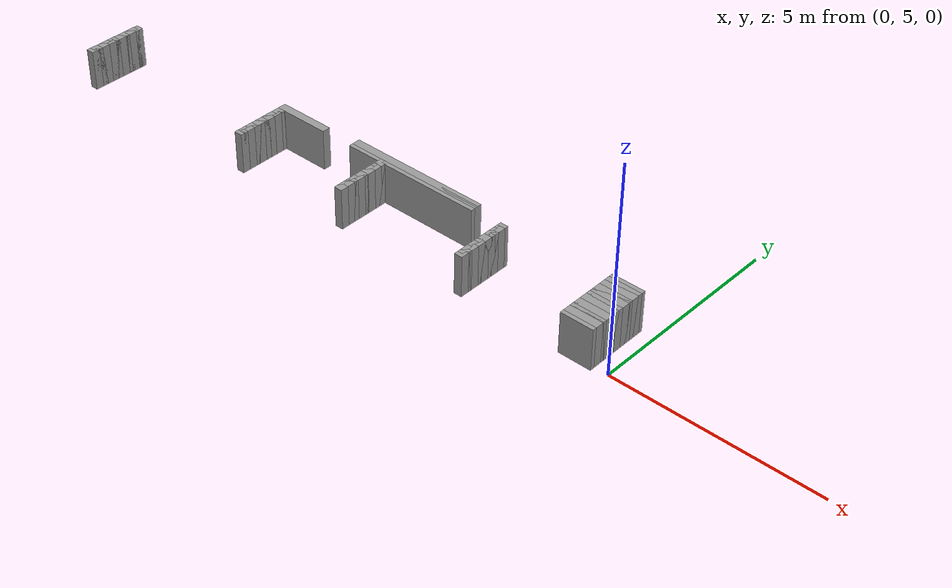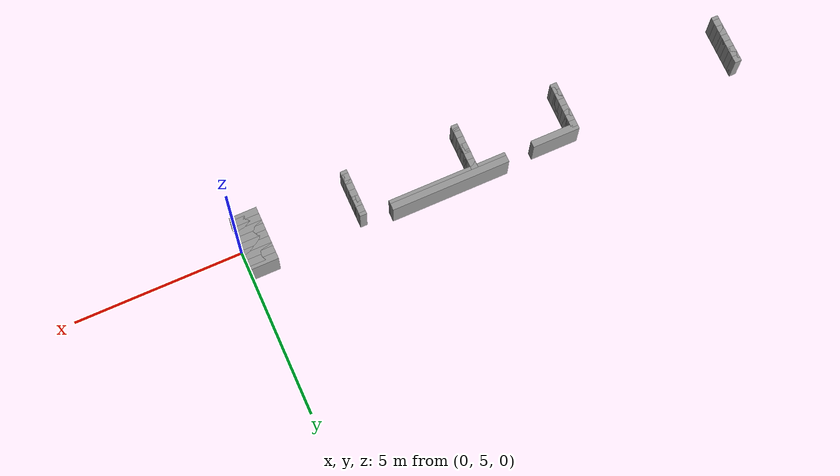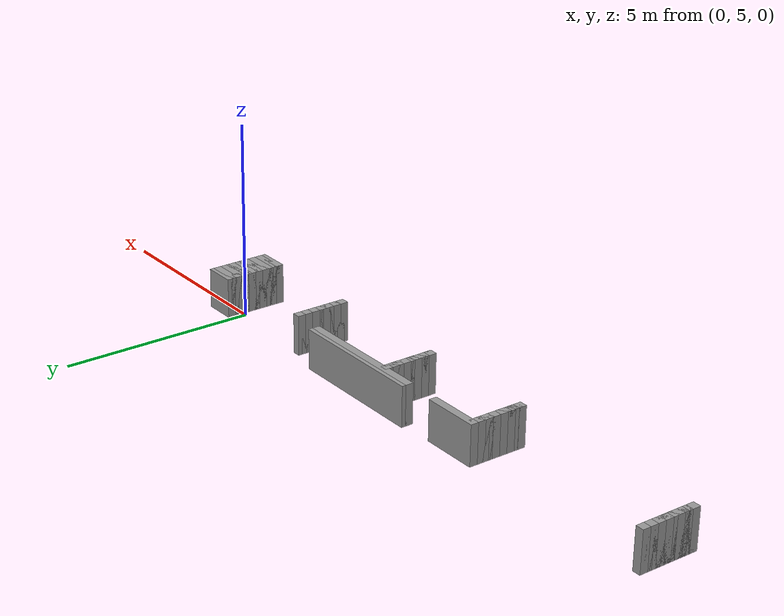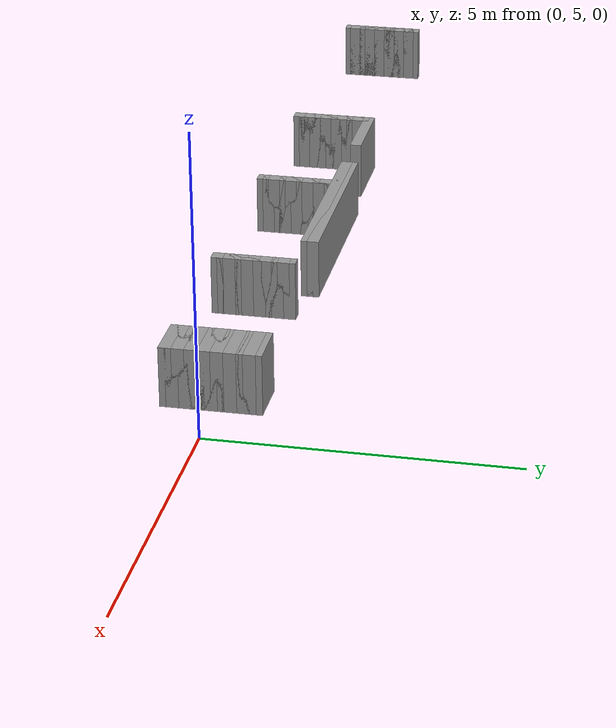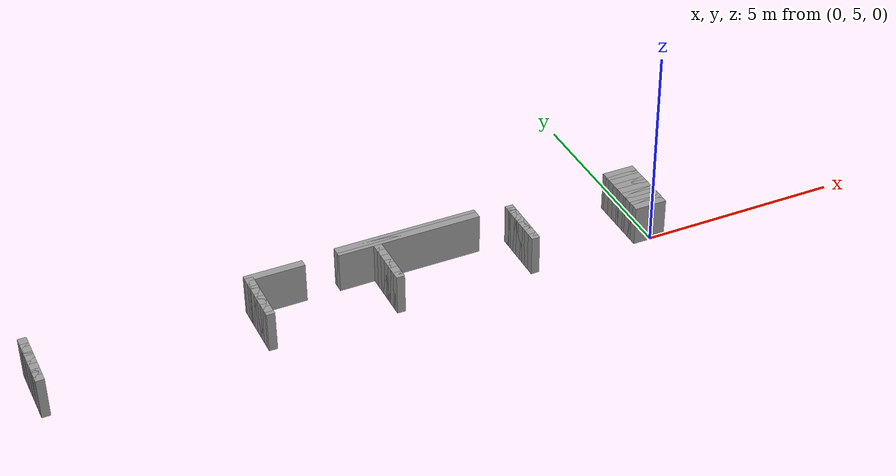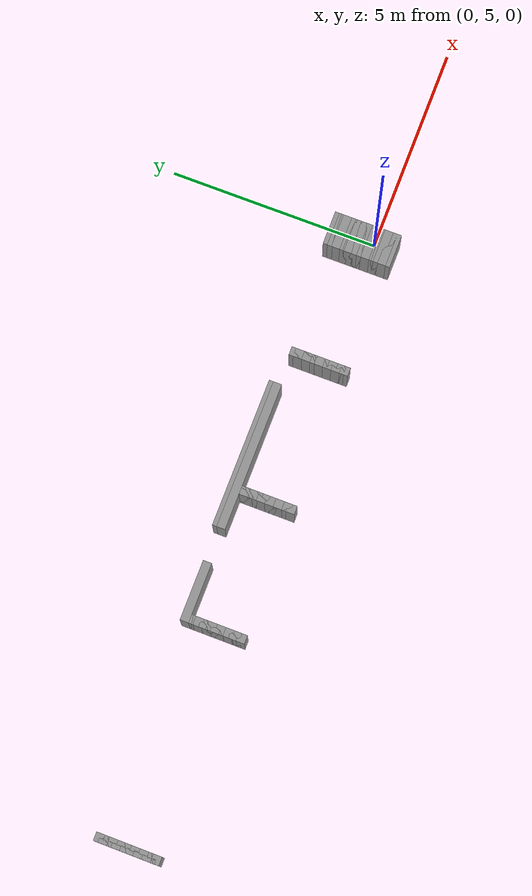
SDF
<sdf version="1.6">
 <world name="GridMap">
  <model name="GridMap">
   <link name="Wall_(4.0,45.0)">
    <collision name="Wall_(4.0,45.0)_Collision">
     <geometry><box><size>0.8 0.2 1.0</size></box></geometry>
     <pose>-0.4 4.5 0.5 0 -0 0</pose>
    </collision>
    <visual name="Wall_(4.0,45.0)_Visual">
     <geometry><box><size>0.8 0.2 1.0</size></box></geometry>
     <pose>-0.4 4.5 0.5 0 -0 0</pose>
     <material>
      <script><uri>file://media/materials/scripts/gazebo.material</uri><name>Gazebo/Grey</name></script>
      <ambient>1 1 1 1</ambient>
     </material>
     <meta><layer>0</layer></meta>
    </visual>
    <pose>0 0 0.5 0 -0 0</pose>
   </link>
   <link name="Wall_(34.0,45.0)">
    <collision name="Wall_(34.0,45.0)_Collision">
     <geometry><box><size>0.2 0.2 1.0</size></box></geometry>
     <pose>-3.4000000000000004 4.5 0.5 0 -0 0</pose>
    </collision>
    <visual name="Wall_(34.0,45.0)_Visual">
     <geometry><box><size>0.2 0.2 1.0</size></box></geometry>
     <pose>-3.4000000000000004 4.5 0.5 0 -0 0</pose>
     <material>
      <script><uri>file://media/materials/scripts/gazebo.material</uri><name>Gazebo/Grey</name></script>
      <ambient>1 1 1 1</ambient>
     </material>
     <meta><layer>0</layer></meta>
    </visual>
    <pose>0 0 0.5 0 -0 0</pose>
   </link>
   <link name="Wall_(67.5,45.0)">
    <collision name="Wall_(67.5,45.0)_Collision">
     <geometry><box><size>0.2 0.2 1.0</size></box></geometry>
     <pose>-6.75 4.5 0.5 0 -0 0</pose>
    </collision>
    <visual name="Wall_(67.5,45.0)_Visual">
     <geometry><box><size>0.2 0.2 1.0</size></box></geometry>
     <pose>-6.75 4.5 0.5 0 -0 0</pose>
     <material>
      <script><uri>file://media/materials/scripts/gazebo.material</uri><name>Gazebo/Grey</name></script>
      <ambient>1 1 1 1</ambient>
     </material>
     <meta><layer>0</layer></meta>
    </visual>
    <pose>0 0 0.5 0 -0 0</pose>
   </link>
   <link name="Wall_(98.0,45.0)">
    <collision name="Wall_(98.0,45.0)_Collision">
     <geometry><box><size>0.2 0.2 1.0</size></box></geometry>
     <pose>-9.8 4.5 0.5 0 -0 0</pose>
    </collision>
    <visual name="Wall_(98.0,45.0)_Visual">
     <geometry><box><size>0.2 0.2 1.0</size></box></geometry>
     <pose>-9.8 4.5 0.5 0 -0 0</pose>
     <material>
      <script><uri>file://media/materials/scripts/gazebo.material</uri><name>Gazebo/Grey</name></script>
      <ambient>1 1 1 1</ambient>
     </material>
     <meta><layer>0</layer></meta>
    </visual>
    <pose>0 0 0.5 0 -0 0</pose>
   </link>
   <link name="Wall_(148.5,45.0)">
    <collision name="Wall_(148.5,45.0)_Collision">
     <geometry><box><size>0.2 0.2 1.0</size></box></geometry>
     <pose>-14.850000000000001 4.5 0.5 0 -0 0</pose>
    </collision>
    <visual name="Wall_(148.5,45.0)_Visual">
     <geometry><box><size>0.2 0.2 1.0</size></box></geometry>
     <pose>-14.850000000000001 4.5 0.5 0 -0 0</pose>
     <material>
      <script><uri>file://media/materials/scripts/gazebo.material</uri><name>Gazebo/Grey</name></script>
      <ambient>1 1 1 1</ambient>
     </material>
     <meta><layer>0</layer></meta>
    </visual>
    <pose>0 0 0.5 0 -0 0</pose>
   </link>
   <link name="Wall_(4.0,46.0)">
    <collision name="Wall_(4.0,46.0)_Collision">
     <geometry><box><size>0.8 0.2 1.0</size></box></geometry>
     <pose>-0.4 4.6000000000000005 0.5 0 -0 0</pose>
    </collision>
    <visual name="Wall_(4.0,46.0)_Visual">
     <geometry><box><size>0.8 0.2 1.0</size></box></geometry>
     <pose>-0.4 4.6000000000000005 0.5 0 -0 0</pose>
     <material>
      <script><uri>file://media/materials/scripts/gazebo.material</uri><name>Gazebo/Grey</name></script>
      <ambient>1 1 1 1</ambient>
     </material>
     <meta><layer>0</layer></meta>
    </visual>
    <pose>0 0 0.5 0 -0 0</pose>
   </link>
   <link name="Wall_(34.0,46.0)">
    <collision name="Wall_(34.0,46.0)_Collision">
     <geometry><box><size>0.2 0.2 1.0</size></box></geometry>
     <pose>-3.4000000000000004 4.6000000000000005 0.5 0 -0 0</pose>
    </collision>
    <visual name="Wall_(34.0,46.0)_Visual">
     <geometry><box><size>0.2 0.2 1.0</size></box></geometry>
     <pose>-3.4000000000000004 4.6000000000000005 0.5 0 -0 0</pose>
     <material>
      <script><uri>file://media/materials/scripts/gazebo.material</uri><name>Gazebo/Grey</name></script>
      <ambient>1 1 1 1</ambient>
     </material>
     <meta><layer>0</layer></meta>
    </visual>
    <pose>0 0 0.5 0 -0 0</pose>
   </link>
   <link name="Wall_(67.5,46.0)">
    <collision name="Wall_(67.5,46.0)_Collision">
     <geometry><box><size>0.2 0.2 1.0</size></box></geometry>
     <pose>-6.75 4.6000000000000005 0.5 0 -0 0</pose>
    </collision>
    <visual name="Wall_(67.5,46.0)_Visual">
     <geometry><box><size>0.2 0.2 1.0</size></box></geometry>
     <pose>-6.75 4.6000000000000005 0.5 0 -0 0</pose>
     <material>
      <script><uri>file://media/materials/scripts/gazebo.material</uri><name>Gazebo/Grey</name></script>
      <ambient>1 1 1 1</ambient>
     </material>
     <meta><layer>0</layer></meta>
    </visual>
    <pose>0 0 0.5 0 -0 0</pose>
   </link>
   <link name="Wall_(98.0,46.0)">
    <collision name="Wall_(98.0,46.0)_Collision">
     <geometry><box><size>0.2 0.2 1.0</size></box></geometry>
     <pose>-9.8 4.6000000000000005 0.5 0 -0 0</pose>
    </collision>
    <visual name="Wall_(98.0,46.0)_Visual">
     <geometry><box><size>0.2 0.2 1.0</size></box></geometry>
     <pose>-9.8 4.6000000000000005 0.5 0 -0 0</pose>
     <material>
      <script><uri>file://media/materials/scripts/gazebo.material</uri><name>Gazebo/Grey</name></script>
      <ambient>1 1 1 1</ambient>
     </material>
     <meta><layer>0</layer></meta>
    </visual>
    <pose>0 0 0.5 0 -0 0</pose>
   </link>
   <link name="Wall_(148.5,46.0)">
    <collision name="Wall_(148.5,46.0)_Collision">
     <geometry><box><size>0.2 0.2 1.0</size></box></geometry>
     <pose>-14.850000000000001 4.6000000000000005 0.5 0 -0 0</pose>
    </collision>
    <visual name="Wall_(148.5,46.0)_Visual">
     <geometry><box><size>0.2 0.2 1.0</size></box></geometry>
     <pose>-14.850000000000001 4.6000000000000005 0.5 0 -0 0</pose>
     <material>
      <script><uri>file://media/materials/scripts/gazebo.material</uri><name>Gazebo/Grey</name></script>
      <ambient>1 1 1 1</ambient>
     </material>
     <meta><layer>0</layer></meta>
    </visual>
    <pose>0 0 0.5 0 -0 0</pose>
   </link>
   <link name="Wall_(4.0,47.0)">
    <collision name="Wall_(4.0,47.0)_Collision">
     <geometry><box><size>0.8 0.2 1.0</size></box></geometry>
     <pose>-0.4 4.7 0.5 0 -0 0</pose>
    </collision>
    <visual name="Wall_(4.0,47.0)_Visual">
     <geometry><box><size>0.8 0.2 1.0</size></box></geometry>
     <pose>-0.4 4.7 0.5 0 -0 0</pose>
     <material>
      <script><uri>file://media/materials/scripts/gazebo.material</uri><name>Gazebo/Grey</name></script>
      <ambient>1 1 1 1</ambient>
     </material>
     <meta><layer>0</layer></meta>
    </visual>
    <pose>0 0 0.5 0 -0 0</pose>
   </link>
   <link name="Wall_(34.0,47.0)">
    <collision name="Wall_(34.0,47.0)_Collision">
     <geometry><box><size>0.2 0.2 1.0</size></box></geometry>
     <pose>-3.4000000000000004 4.7 0.5 0 -0 0</pose>
    </collision>
    <visual name="Wall_(34.0,47.0)_Visual">
     <geometry><box><size>0.2 0.2 1.0</size></box></geometry>
     <pose>-3.4000000000000004 4.7 0.5 0 -0 0</pose>
     <material>
      <script><uri>file://media/materials/scripts/gazebo.material</uri><name>Gazebo/Grey</name></script>
      <ambient>1 1 1 1</ambient>
     </material>
     <meta><layer>0</layer></meta>
    </visual>
    <pose>0 0 0.5 0 -0 0</pose>
   </link>
   <link name="Wall_(67.5,47.0)">
    <collision name="Wall_(67.5,47.0)_Collision">
     <geometry><box><size>0.2 0.2 1.0</size></box></geometry>
     <pose>-6.75 4.7 0.5 0 -0 0</pose>
    </collision>
    <visual name="Wall_(67.5,47.0)_Visual">
     <geometry><box><size>0.2 0.2 1.0</size></box></geometry>
     <pose>-6.75 4.7 0.5 0 -0 0</pose>
     <material>
      <script><uri>file://media/materials/scripts/gazebo.material</uri><name>Gazebo/Grey</name></script>
      <ambient>1 1 1 1</ambient>
     </material>
     <meta><layer>0</layer></meta>
    </visual>
    <pose>0 0 0.5 0 -0 0</pose>
   </link>
   <link name="Wall_(98.0,47.0)">
    <collision name="Wall_(98.0,47.0)_Collision">
     <geometry><box><size>0.2 0.2 1.0</size></box></geometry>
     <pose>-9.8 4.7 0.5 0 -0 0</pose>
    </collision>
    <visual name="Wall_(98.0,47.0)_Visual">
     <geometry><box><size>0.2 0.2 1.0</size></box></geometry>
     <pose>-9.8 4.7 0.5 0 -0 0</pose>
     <material>
      <script><uri>file://media/materials/scripts/gazebo.material</uri><name>Gazebo/Grey</name></script>
      <ambient>1 1 1 1</ambient>
     </material>
     <meta><layer>0</layer></meta>
    </visual>
    <pose>0 0 0.5 0 -0 0</pose>
   </link>
   <link name="Wall_(148.5,47.0)">
    <collision name="Wall_(148.5,47.0)_Collision">
     <geometry><box><size>0.2 0.2 1.0</size></box></geometry>
     <pose>-14.850000000000001 4.7 0.5 0 -0 0</pose>
    </collision>
    <visual name="Wall_(148.5,47.0)_Visual">
     <geometry><box><size>0.2 0.2 1.0</size></box></geometry>
     <pose>-14.850000000000001 4.7 0.5 0 -0 0</pose>
     <material>
      <script><uri>file://media/materials/scripts/gazebo.material</uri><name>Gazebo/Grey</name></script>
      <ambient>1 1 1 1</ambient>
     </material>
     <meta><layer>0</layer></meta>
    </visual>
    <pose>0 0 0.5 0 -0 0</pose>
   </link>
   <link name="Wall_(4.0,48.0)">
    <collision name="Wall_(4.0,48.0)_Collision">
     <geometry><box><size>0.8 0.2 1.0</size></box></geometry>
     <pose>-0.4 4.800000000000001 0.5 0 -0 0</pose>
    </collision>
    <visual name="Wall_(4.0,48.0)_Visual">
     <geometry><box><size>0.8 0.2 1.0</size></box></geometry>
     <pose>-0.4 4.800000000000001 0.5 0 -0 0</pose>
     <material>
      <script><uri>file://media/materials/scripts/gazebo.material</uri><name>Gazebo/Grey</name></script>
      <ambient>1 1 1 1</ambient>
     </material>
     <meta><layer>0</layer></meta>
    </visual>
    <pose>0 0 0.5 0 -0 0</pose>
   </link>
   <link name="Wall_(34.0,48.0)">
    <collision name="Wall_(34.0,48.0)_Collision">
     <geometry><box><size>0.2 0.2 1.0</size></box></geometry>
     <pose>-3.4000000000000004 4.800000000000001 0.5 0 -0 0</pose>
    </collision>
    <visual name="Wall_(34.0,48.0)_Visual">
     <geometry><box><size>0.2 0.2 1.0</size></box></geometry>
     <pose>-3.4000000000000004 4.800000000000001 0.5 0 -0 0</pose>
     <material>
      <script><uri>file://media/materials/scripts/gazebo.material</uri><name>Gazebo/Grey</name></script>
      <ambient>1 1 1 1</ambient>
     </material>
     <meta><layer>0</layer></meta>
    </visual>
    <pose>0 0 0.5 0 -0 0</pose>
   </link>
   <link name="Wall_(67.5,48.0)">
    <collision name="Wall_(67.5,48.0)_Collision">
     <geometry><box><size>0.2 0.2 1.0</size></box></geometry>
     <pose>-6.75 4.800000000000001 0.5 0 -0 0</pose>
    </collision>
    <visual name="Wall_(67.5,48.0)_Visual">
     <geometry><box><size>0.2 0.2 1.0</size></box></geometry>
     <pose>-6.75 4.800000000000001 0.5 0 -0 0</pose>
     <material>
      <script><uri>file://media/materials/scripts/gazebo.material</uri><name>Gazebo/Grey</name></script>
      <ambient>1 1 1 1</ambient>
     </material>
     <meta><layer>0</layer></meta>
    </visual>
    <pose>0 0 0.5 0 -0 0</pose>
   </link>
   <link name="Wall_(98.0,48.0)">
    <collision name="Wall_(98.0,48.0)_Collision">
     <geometry><box><size>0.2 0.2 1.0</size></box></geometry>
     <pose>-9.8 4.800000000000001 0.5 0 -0 0</pose>
    </collision>
    <visual name="Wall_(98.0,48.0)_Visual">
     <geometry><box><size>0.2 0.2 1.0</size></box></geometry>
     <pose>-9.8 4.800000000000001 0.5 0 -0 0</pose>
     <material>
      <script><uri>file://media/materials/scripts/gazebo.material</uri><name>Gazebo/Grey</name></script>
      <ambient>1 1 1 1</ambient>
     </material>
     <meta><layer>0</layer></meta>
    </visual>
    <pose>0 0 0.5 0 -0 0</pose>
   </link>
   <link name="Wall_(148.5,48.0)">
    <collision name="Wall_(148.5,48.0)_Collision">
     <geometry><box><size>0.2 0.2 1.0</size></box></geometry>
     <pose>-14.850000000000001 4.800000000000001 0.5 0 -0 0</pose>
    </collision>
    <visual name="Wall_(148.5,48.0)_Visual">
     <geometry><box><size>0.2 0.2 1.0</size></box></geometry>
     <pose>-14.850000000000001 4.800000000000001 0.5 0 -0 0</pose>
     <material>
      <script><uri>file://media/materials/scripts/gazebo.material</uri><name>Gazebo/Grey</name></script>
      <ambient>1 1 1 1</ambient>
     </material>
     <meta><layer>0</layer></meta>
    </visual>
    <pose>0 0 0.5 0 -0 0</pose>
   </link>
   <link name="Wall_(4.0,49.0)">
    <collision name="Wall_(4.0,49.0)_Collision">
     <geometry><box><size>0.8 0.2 1.0</size></box></geometry>
     <pose>-0.4 4.9 0.5 0 -0 0</pose>
    </collision>
    <visual name="Wall_(4.0,49.0)_Visual">
     <geometry><box><size>0.8 0.2 1.0</size></box></geometry>
     <pose>-0.4 4.9 0.5 0 -0 0</pose>
     <material>
      <script><uri>file://media/materials/scripts/gazebo.material</uri><name>Gazebo/Grey</name></script>
      <ambient>1 1 1 1</ambient>
     </material>
     <meta><layer>0</layer></meta>
    </visual>
    <pose>0 0 0.5 0 -0 0</pose>
   </link>
   <link name="Wall_(34.0,49.0)">
    <collision name="Wall_(34.0,49.0)_Collision">
     <geometry><box><size>0.2 0.2 1.0</size></box></geometry>
     <pose>-3.4000000000000004 4.9 0.5 0 -0 0</pose>
    </collision>
    <visual name="Wall_(34.0,49.0)_Visual">
     <geometry><box><size>0.2 0.2 1.0</size></box></geometry>
     <pose>-3.4000000000000004 4.9 0.5 0 -0 0</pose>
     <material>
      <script><uri>file://media/materials/scripts/gazebo.material</uri><name>Gazebo/Grey</name></script>
      <ambient>1 1 1 1</ambient>
     </material>
     <meta><layer>0</layer></meta>
    </visual>
    <pose>0 0 0.5 0 -0 0</pose>
   </link>
   <link name="Wall_(67.5,49.0)">
    <collision name="Wall_(67.5,49.0)_Collision">
     <geometry><box><size>0.2 0.2 1.0</size></box></geometry>
     <pose>-6.75 4.9 0.5 0 -0 0</pose>
    </collision>
    <visual name="Wall_(67.5,49.0)_Visual">
     <geometry><box><size>0.2 0.2 1.0</size></box></geometry>
     <pose>-6.75 4.9 0.5 0 -0 0</pose>
     <material>
      <script><uri>file://media/materials/scripts/gazebo.material</uri><name>Gazebo/Grey</name></script>
      <ambient>1 1 1 1</ambient>
     </material>
     <meta><layer>0</layer></meta>
    </visual>
    <pose>0 0 0.5 0 -0 0</pose>
   </link>
   <link name="Wall_(98.0,49.0)">
    <collision name="Wall_(98.0,49.0)_Collision">
     <geometry><box><size>0.2 0.2 1.0</size></box></geometry>
     <pose>-9.8 4.9 0.5 0 -0 0</pose>
    </collision>
    <visual name="Wall_(98.0,49.0)_Visual">
     <geometry><box><size>0.2 0.2 1.0</size></box></geometry>
     <pose>-9.8 4.9 0.5 0 -0 0</pose>
     <material>
      <script><uri>file://media/materials/scripts/gazebo.material</uri><name>Gazebo/Grey</name></script>
      <ambient>1 1 1 1</ambient>
     </material>
     <meta><layer>0</layer></meta>
    </visual>
    <pose>0 0 0.5 0 -0 0</pose>
   </link>
   <link name="Wall_(148.5,49.0)">
    <collision name="Wall_(148.5,49.0)_Collision">
     <geometry><box><size>0.2 0.2 1.0</size></box></geometry>
     <pose>-14.850000000000001 4.9 0.5 0 -0 0</pose>
    </collision>
    <visual name="Wall_(148.5,49.0)_Visual">
     <geometry><box><size>0.2 0.2 1.0</size></box></geometry>
     <pose>-14.850000000000001 4.9 0.5 0 -0 0</pose>
     <material>
      <script><uri>file://media/materials/scripts/gazebo.material</uri><name>Gazebo/Grey</name></script>
      <ambient>1 1 1 1</ambient>
     </material>
     <meta><layer>0</layer></meta>
    </visual>
    <pose>0 0 0.5 0 -0 0</pose>
   </link>
   <link name="Wall_(4.0,50.0)">
    <collision name="Wall_(4.0,50.0)_Collision">
     <geometry><box><size>0.8 0.2 1.0</size></box></geometry>
     <pose>-0.4 5.0 0.5 0 -0 0</pose>
    </collision>
    <visual name="Wall_(4.0,50.0)_Visual">
     <geometry><box><size>0.8 0.2 1.0</size></box></geometry>
     <pose>-0.4 5.0 0.5 0 -0 0</pose>
     <material>
      <script><uri>file://media/materials/scripts/gazebo.material</uri><name>Gazebo/Grey</name></script>
      <ambient>1 1 1 1</ambient>
     </material>
     <meta><layer>0</layer></meta>
    </visual>
    <pose>0 0 0.5 0 -0 0</pose>
   </link>
   <link name="Wall_(34.0,50.0)">
    <collision name="Wall_(34.0,50.0)_Collision">
     <geometry><box><size>0.2 0.2 1.0</size></box></geometry>
     <pose>-3.4000000000000004 5.0 0.5 0 -0 0</pose>
    </collision>
    <visual name="Wall_(34.0,50.0)_Visual">
     <geometry><box><size>0.2 0.2 1.0</size></box></geometry>
     <pose>-3.4000000000000004 5.0 0.5 0 -0 0</pose>
     <material>
      <script><uri>file://media/materials/scripts/gazebo.material</uri><name>Gazebo/Grey</name></script>
      <ambient>1 1 1 1</ambient>
     </material>
     <meta><layer>0</layer></meta>
    </visual>
    <pose>0 0 0.5 0 -0 0</pose>
   </link>
   <link name="Wall_(67.5,50.0)">
    <collision name="Wall_(67.5,50.0)_Collision">
     <geometry><box><size>0.2 0.2 1.0</size></box></geometry>
     <pose>-6.75 5.0 0.5 0 -0 0</pose>
    </collision>
    <visual name="Wall_(67.5,50.0)_Visual">
     <geometry><box><size>0.2 0.2 1.0</size></box></geometry>
     <pose>-6.75 5.0 0.5 0 -0 0</pose>
     <material>
      <script><uri>file://media/materials/scripts/gazebo.material</uri><name>Gazebo/Grey</name></script>
      <ambient>1 1 1 1</ambient>
     </material>
     <meta><layer>0</layer></meta>
    </visual>
    <pose>0 0 0.5 0 -0 0</pose>
   </link>
   <link name="Wall_(98.0,50.0)">
    <collision name="Wall_(98.0,50.0)_Collision">
     <geometry><box><size>0.2 0.2 1.0</size></box></geometry>
     <pose>-9.8 5.0 0.5 0 -0 0</pose>
    </collision>
    <visual name="Wall_(98.0,50.0)_Visual">
     <geometry><box><size>0.2 0.2 1.0</size></box></geometry>
     <pose>-9.8 5.0 0.5 0 -0 0</pose>
     <material>
      <script><uri>file://media/materials/scripts/gazebo.material</uri><name>Gazebo/Grey</name></script>
      <ambient>1 1 1 1</ambient>
     </material>
     <meta><layer>0</layer></meta>
    </visual>
    <pose>0 0 0.5 0 -0 0</pose>
   </link>
   <link name="Wall_(148.5,50.0)">
    <collision name="Wall_(148.5,50.0)_Collision">
     <geometry><box><size>0.2 0.2 1.0</size></box></geometry>
     <pose>-14.850000000000001 5.0 0.5 0 -0 0</pose>
    </collision>
    <visual name="Wall_(148.5,50.0)_Visual">
     <geometry><box><size>0.2 0.2 1.0</size></box></geometry>
     <pose>-14.850000000000001 5.0 0.5 0 -0 0</pose>
     <material>
      <script><uri>file://media/materials/scripts/gazebo.material</uri><name>Gazebo/Grey</name></script>
      <ambient>1 1 1 1</ambient>
     </material>
     <meta><layer>0</layer></meta>
    </visual>
    <pose>0 0 0.5 0 -0 0</pose>
   </link>
   <link name="Wall_(4.0,51.0)">
    <collision name="Wall_(4.0,51.0)_Collision">
     <geometry><box><size>0.8 0.2 1.0</size></box></geometry>
     <pose>-0.4 5.1000000000000005 0.5 0 -0 0</pose>
    </collision>
    <visual name="Wall_(4.0,51.0)_Visual">
     <geometry><box><size>0.8 0.2 1.0</size></box></geometry>
     <pose>-0.4 5.1000000000000005 0.5 0 -0 0</pose>
     <material>
      <script><uri>file://media/materials/scripts/gazebo.material</uri><name>Gazebo/Grey</name></script>
      <ambient>1 1 1 1</ambient>
     </material>
     <meta><layer>0</layer></meta>
    </visual>
    <pose>0 0 0.5 0 -0 0</pose>
   </link>
   <link name="Wall_(34.0,51.0)">
    <collision name="Wall_(34.0,51.0)_Collision">
     <geometry><box><size>0.2 0.2 1.0</size></box></geometry>
     <pose>-3.4000000000000004 5.1000000000000005 0.5 0 -0 0</pose>
    </collision>
    <visual name="Wall_(34.0,51.0)_Visual">
     <geometry><box><size>0.2 0.2 1.0</size></box></geometry>
     <pose>-3.4000000000000004 5.1000000000000005 0.5 0 -0 0</pose>
     <material>
      <script><uri>file://media/materials/scripts/gazebo.material</uri><name>Gazebo/Grey</name></script>
      <ambient>1 1 1 1</ambient>
     </material>
     <meta><layer>0</layer></meta>
    </visual>
    <pose>0 0 0.5 0 -0 0</pose>
   </link>
   <link name="Wall_(67.5,51.0)">
    <collision name="Wall_(67.5,51.0)_Collision">
     <geometry><box><size>0.2 0.2 1.0</size></box></geometry>
     <pose>-6.75 5.1000000000000005 0.5 0 -0 0</pose>
    </collision>
    <visual name="Wall_(67.5,51.0)_Visual">
     <geometry><box><size>0.2 0.2 1.0</size></box></geometry>
     <pose>-6.75 5.1000000000000005 0.5 0 -0 0</pose>
     <material>
      <script><uri>file://media/materials/scripts/gazebo.material</uri><name>Gazebo/Grey</name></script>
      <ambient>1 1 1 1</ambient>
     </material>
     <meta><layer>0</layer></meta>
    </visual>
    <pose>0 0 0.5 0 -0 0</pose>
   </link>
   <link name="Wall_(98.0,51.0)">
    <collision name="Wall_(98.0,51.0)_Collision">
     <geometry><box><size>0.2 0.2 1.0</size></box></geometry>
     <pose>-9.8 5.1000000000000005 0.5 0 -0 0</pose>
    </collision>
    <visual name="Wall_(98.0,51.0)_Visual">
     <geometry><box><size>0.2 0.2 1.0</size></box></geometry>
     <pose>-9.8 5.1000000000000005 0.5 0 -0 0</pose>
     <material>
      <script><uri>file://media/materials/scripts/gazebo.material</uri><name>Gazebo/Grey</name></script>
      <ambient>1 1 1 1</ambient>
     </material>
     <meta><layer>0</layer></meta>
    </visual>
    <pose>0 0 0.5 0 -0 0</pose>
   </link>
   <link name="Wall_(148.5,51.0)">
    <collision name="Wall_(148.5,51.0)_Collision">
     <geometry><box><size>0.2 0.2 1.0</size></box></geometry>
     <pose>-14.850000000000001 5.1000000000000005 0.5 0 -0 0</pose>
    </collision>
    <visual name="Wall_(148.5,51.0)_Visual">
     <geometry><box><size>0.2 0.2 1.0</size></box></geometry>
     <pose>-14.850000000000001 5.1000000000000005 0.5 0 -0 0</pose>
     <material>
      <script><uri>file://media/materials/scripts/gazebo.material</uri><name>Gazebo/Grey</name></script>
      <ambient>1 1 1 1</ambient>
     </material>
     <meta><layer>0</layer></meta>
    </visual>
    <pose>0 0 0.5 0 -0 0</pose>
   </link>
   <link name="Wall_(4.0,52.0)">
    <collision name="Wall_(4.0,52.0)_Collision">
     <geometry><box><size>0.8 0.2 1.0</size></box></geometry>
     <pose>-0.4 5.2 0.5 0 -0 0</pose>
    </collision>
    <visual name="Wall_(4.0,52.0)_Visual">
     <geometry><box><size>0.8 0.2 1.0</size></box></geometry>
     <pose>-0.4 5.2 0.5 0 -0 0</pose>
     <material>
      <script><uri>file://media/materials/scripts/gazebo.material</uri><name>Gazebo/Grey</name></script>
      <ambient>1 1 1 1</ambient>
     </material>
     <meta><layer>0</layer></meta>
    </visual>
    <pose>0 0 0.5 0 -0 0</pose>
   </link>
   <link name="Wall_(34.0,52.0)">
    <collision name="Wall_(34.0,52.0)_Collision">
     <geometry><box><size>0.2 0.2 1.0</size></box></geometry>
     <pose>-3.4000000000000004 5.2 0.5 0 -0 0</pose>
    </collision>
    <visual name="Wall_(34.0,52.0)_Visual">
     <geometry><box><size>0.2 0.2 1.0</size></box></geometry>
     <pose>-3.4000000000000004 5.2 0.5 0 -0 0</pose>
     <material>
      <script><uri>file://media/materials/scripts/gazebo.material</uri><name>Gazebo/Grey</name></script>
      <ambient>1 1 1 1</ambient>
     </material>
     <meta><layer>0</layer></meta>
    </visual>
    <pose>0 0 0.5 0 -0 0</pose>
   </link>
   <link name="Wall_(67.5,52.0)">
    <collision name="Wall_(67.5,52.0)_Collision">
     <geometry><box><size>0.2 0.2 1.0</size></box></geometry>
     <pose>-6.75 5.2 0.5 0 -0 0</pose>
    </collision>
    <visual name="Wall_(67.5,52.0)_Visual">
     <geometry><box><size>0.2 0.2 1.0</size></box></geometry>
     <pose>-6.75 5.2 0.5 0 -0 0</pose>
     <material>
      <script><uri>file://media/materials/scripts/gazebo.material</uri><name>Gazebo/Grey</name></script>
      <ambient>1 1 1 1</ambient>
     </material>
     <meta><layer>0</layer></meta>
    </visual>
    <pose>0 0 0.5 0 -0 0</pose>
   </link>
   <link name="Wall_(98.0,52.0)">
    <collision name="Wall_(98.0,52.0)_Collision">
     <geometry><box><size>0.2 0.2 1.0</size></box></geometry>
     <pose>-9.8 5.2 0.5 0 -0 0</pose>
    </collision>
    <visual name="Wall_(98.0,52.0)_Visual">
     <geometry><box><size>0.2 0.2 1.0</size></box></geometry>
     <pose>-9.8 5.2 0.5 0 -0 0</pose>
     <material>
      <script><uri>file://media/materials/scripts/gazebo.material</uri><name>Gazebo/Grey</name></script>
      <ambient>1 1 1 1</ambient>
     </material>
     <meta><layer>0</layer></meta>
    </visual>
    <pose>0 0 0.5 0 -0 0</pose>
   </link>
   <link name="Wall_(148.5,52.0)">
    <collision name="Wall_(148.5,52.0)_Collision">
     <geometry><box><size>0.2 0.2 1.0</size></box></geometry>
     <pose>-14.850000000000001 5.2 0.5 0 -0 0</pose>
    </collision>
    <visual name="Wall_(148.5,52.0)_Visual">
     <geometry><box><size>0.2 0.2 1.0</size></box></geometry>
     <pose>-14.850000000000001 5.2 0.5 0 -0 0</pose>
     <material>
      <script><uri>file://media/materials/scripts/gazebo.material</uri><name>Gazebo/Grey</name></script>
      <ambient>1 1 1 1</ambient>
     </material>
     <meta><layer>0</layer></meta>
    </visual>
    <pose>0 0 0.5 0 -0 0</pose>
   </link>
   <link name="Wall_(4.0,53.0)">
    <collision name="Wall_(4.0,53.0)_Collision">
     <geometry><box><size>0.8 0.2 1.0</size></box></geometry>
     <pose>-0.4 5.300000000000001 0.5 0 -0 0</pose>
    </collision>
    <visual name="Wall_(4.0,53.0)_Visual">
     <geometry><box><size>0.8 0.2 1.0</size></box></geometry>
     <pose>-0.4 5.300000000000001 0.5 0 -0 0</pose>
     <material>
      <script><uri>file://media/materials/scripts/gazebo.material</uri><name>Gazebo/Grey</name></script>
      <ambient>1 1 1 1</ambient>
     </material>
     <meta><layer>0</layer></meta>
    </visual>
    <pose>0 0 0.5 0 -0 0</pose>
   </link>
   <link name="Wall_(34.0,53.0)">
    <collision name="Wall_(34.0,53.0)_Collision">
     <geometry><box><size>0.2 0.2 1.0</size></box></geometry>
     <pose>-3.4000000000000004 5.300000000000001 0.5 0 -0 0</pose>
    </collision>
    <visual name="Wall_(34.0,53.0)_Visual">
     <geometry><box><size>0.2 0.2 1.0</size></box></geometry>
     <pose>-3.4000000000000004 5.300000000000001 0.5 0 -0 0</pose>
     <material>
      <script><uri>file://media/materials/scripts/gazebo.material</uri><name>Gazebo/Grey</name></script>
      <ambient>1 1 1 1</ambient>
     </material>
     <meta><layer>0</layer></meta>
    </visual>
    <pose>0 0 0.5 0 -0 0</pose>
   </link>
   <link name="Wall_(67.5,53.0)">
    <collision name="Wall_(67.5,53.0)_Collision">
     <geometry><box><size>0.2 0.2 1.0</size></box></geometry>
     <pose>-6.75 5.300000000000001 0.5 0 -0 0</pose>
    </collision>
    <visual name="Wall_(67.5,53.0)_Visual">
     <geometry><box><size>0.2 0.2 1.0</size></box></geometry>
     <pose>-6.75 5.300000000000001 0.5 0 -0 0</pose>
     <material>
      <script><uri>file://media/materials/scripts/gazebo.material</uri><name>Gazebo/Grey</name></script>
      <ambient>1 1 1 1</ambient>
     </material>
     <meta><layer>0</layer></meta>
    </visual>
    <pose>0 0 0.5 0 -0 0</pose>
   </link>
   <link name="Wall_(98.0,53.0)">
    <collision name="Wall_(98.0,53.0)_Collision">
     <geometry><box><size>0.2 0.2 1.0</size></box></geometry>
     <pose>-9.8 5.300000000000001 0.5 0 -0 0</pose>
    </collision>
    <visual name="Wall_(98.0,53.0)_Visual">
     <geometry><box><size>0.2 0.2 1.0</size></box></geometry>
     <pose>-9.8 5.300000000000001 0.5 0 -0 0</pose>
     <material>
      <script><uri>file://media/materials/scripts/gazebo.material</uri><name>Gazebo/Grey</name></script>
      <ambient>1 1 1 1</ambient>
     </material>
     <meta><layer>0</layer></meta>
    </visual>
    <pose>0 0 0.5 0 -0 0</pose>
   </link>
   <link name="Wall_(148.5,53.0)">
    <collision name="Wall_(148.5,53.0)_Collision">
     <geometry><box><size>0.2 0.2 1.0</size></box></geometry>
     <pose>-14.850000000000001 5.300000000000001 0.5 0 -0 0</pose>
    </collision>
    <visual name="Wall_(148.5,53.0)_Visual">
     <geometry><box><size>0.2 0.2 1.0</size></box></geometry>
     <pose>-14.850000000000001 5.300000000000001 0.5 0 -0 0</pose>
     <material>
      <script><uri>file://media/materials/scripts/gazebo.material</uri><name>Gazebo/Grey</name></script>
      <ambient>1 1 1 1</ambient>
     </material>
     <meta><layer>0</layer></meta>
    </visual>
    <pose>0 0 0.5 0 -0 0</pose>
   </link>
   <link name="Wall_(4.0,54.0)">
    <collision name="Wall_(4.0,54.0)_Collision">
     <geometry><box><size>0.8 0.2 1.0</size></box></geometry>
     <pose>-0.4 5.4 0.5 0 -0 0</pose>
    </collision>
    <visual name="Wall_(4.0,54.0)_Visual">
     <geometry><box><size>0.8 0.2 1.0</size></box></geometry>
     <pose>-0.4 5.4 0.5 0 -0 0</pose>
     <material>
      <script><uri>file://media/materials/scripts/gazebo.material</uri><name>Gazebo/Grey</name></script>
      <ambient>1 1 1 1</ambient>
     </material>
     <meta><layer>0</layer></meta>
    </visual>
    <pose>0 0 0.5 0 -0 0</pose>
   </link>
   <link name="Wall_(34.0,54.0)">
    <collision name="Wall_(34.0,54.0)_Collision">
     <geometry><box><size>0.2 0.2 1.0</size></box></geometry>
     <pose>-3.4000000000000004 5.4 0.5 0 -0 0</pose>
    </collision>
    <visual name="Wall_(34.0,54.0)_Visual">
     <geometry><box><size>0.2 0.2 1.0</size></box></geometry>
     <pose>-3.4000000000000004 5.4 0.5 0 -0 0</pose>
     <material>
      <script><uri>file://media/materials/scripts/gazebo.material</uri><name>Gazebo/Grey</name></script>
      <ambient>1 1 1 1</ambient>
     </material>
     <meta><layer>0</layer></meta>
    </visual>
    <pose>0 0 0.5 0 -0 0</pose>
   </link>
   <link name="Wall_(67.5,54.0)">
    <collision name="Wall_(67.5,54.0)_Collision">
     <geometry><box><size>0.2 0.2 1.0</size></box></geometry>
     <pose>-6.75 5.4 0.5 0 -0 0</pose>
    </collision>
    <visual name="Wall_(67.5,54.0)_Visual">
     <geometry><box><size>0.2 0.2 1.0</size></box></geometry>
     <pose>-6.75 5.4 0.5 0 -0 0</pose>
     <material>
      <script><uri>file://media/materials/scripts/gazebo.material</uri><name>Gazebo/Grey</name></script>
      <ambient>1 1 1 1</ambient>
     </material>
     <meta><layer>0</layer></meta>
    </visual>
    <pose>0 0 0.5 0 -0 0</pose>
   </link>
   <link name="Wall_(98.0,54.0)">
    <collision name="Wall_(98.0,54.0)_Collision">
     <geometry><box><size>0.2 0.2 1.0</size></box></geometry>
     <pose>-9.8 5.4 0.5 0 -0 0</pose>
    </collision>
    <visual name="Wall_(98.0,54.0)_Visual">
     <geometry><box><size>0.2 0.2 1.0</size></box></geometry>
     <pose>-9.8 5.4 0.5 0 -0 0</pose>
     <material>
      <script><uri>file://media/materials/scripts/gazebo.material</uri><name>Gazebo/Grey</name></script>
      <ambient>1 1 1 1</ambient>
     </material>
     <meta><layer>0</layer></meta>
    </visual>
    <pose>0 0 0.5 0 -0 0</pose>
   </link>
   <link name="Wall_(148.5,54.0)">
    <collision name="Wall_(148.5,54.0)_Collision">
     <geometry><box><size>0.2 0.2 1.0</size></box></geometry>
     <pose>-14.850000000000001 5.4 0.5 0 -0 0</pose>
    </collision>
    <visual name="Wall_(148.5,54.0)_Visual">
     <geometry><box><size>0.2 0.2 1.0</size></box></geometry>
     <pose>-14.850000000000001 5.4 0.5 0 -0 0</pose>
     <material>
      <script><uri>file://media/materials/scripts/gazebo.material</uri><name>Gazebo/Grey</name></script>
      <ambient>1 1 1 1</ambient>
     </material>
     <meta><layer>0</layer></meta>
    </visual>
    <pose>0 0 0.5 0 -0 0</pose>
   </link>
   <link name="Wall_(4.0,55.0)">
    <collision name="Wall_(4.0,55.0)_Collision">
     <geometry><box><size>0.8 0.2 1.0</size></box></geometry>
     <pose>-0.4 5.5 0.5 0 -0 0</pose>
    </collision>
    <visual name="Wall_(4.0,55.0)_Visual">
     <geometry><box><size>0.8 0.2 1.0</size></box></geometry>
     <pose>-0.4 5.5 0.5 0 -0 0</pose>
     <material>
      <script><uri>file://media/materials/scripts/gazebo.material</uri><name>Gazebo/Grey</name></script>
      <ambient>1 1 1 1</ambient>
     </material>
     <meta><layer>0</layer></meta>
    </visual>
    <pose>0 0 0.5 0 -0 0</pose>
   </link>
   <link name="Wall_(34.0,55.0)">
    <collision name="Wall_(34.0,55.0)_Collision">
     <geometry><box><size>0.2 0.2 1.0</size></box></geometry>
     <pose>-3.4000000000000004 5.5 0.5 0 -0 0</pose>
    </collision>
    <visual name="Wall_(34.0,55.0)_Visual">
     <geometry><box><size>0.2 0.2 1.0</size></box></geometry>
     <pose>-3.4000000000000004 5.5 0.5 0 -0 0</pose>
     <material>
      <script><uri>file://media/materials/scripts/gazebo.material</uri><name>Gazebo/Grey</name></script>
      <ambient>1 1 1 1</ambient>
     </material>
     <meta><layer>0</layer></meta>
    </visual>
    <pose>0 0 0.5 0 -0 0</pose>
   </link>
   <link name="Wall_(67.5,55.0)">
    <collision name="Wall_(67.5,55.0)_Collision">
     <geometry><box><size>0.2 0.2 1.0</size></box></geometry>
     <pose>-6.75 5.5 0.5 0 -0 0</pose>
    </collision>
    <visual name="Wall_(67.5,55.0)_Visual">
     <geometry><box><size>0.2 0.2 1.0</size></box></geometry>
     <pose>-6.75 5.5 0.5 0 -0 0</pose>
     <material>
      <script><uri>file://media/materials/scripts/gazebo.material</uri><name>Gazebo/Grey</name></script>
      <ambient>1 1 1 1</ambient>
     </material>
     <meta><layer>0</layer></meta>
    </visual>
    <pose>0 0 0.5 0 -0 0</pose>
   </link>
   <link name="Wall_(98.0,55.0)">
    <collision name="Wall_(98.0,55.0)_Collision">
     <geometry><box><size>0.2 0.2 1.0</size></box></geometry>
     <pose>-9.8 5.5 0.5 0 -0 0</pose>
    </collision>
    <visual name="Wall_(98.0,55.0)_Visual">
     <geometry><box><size>0.2 0.2 1.0</size></box></geometry>
     <pose>-9.8 5.5 0.5 0 -0 0</pose>
     <material>
      <script><uri>file://media/materials/scripts/gazebo.material</uri><name>Gazebo/Grey</name></script>
      <ambient>1 1 1 1</ambient>
     </material>
     <meta><layer>0</layer></meta>
    </visual>
    <pose>0 0 0.5 0 -0 0</pose>
   </link>
   <link name="Wall_(148.5,55.0)">
    <collision name="Wall_(148.5,55.0)_Collision">
     <geometry><box><size>0.2 0.2 1.0</size></box></geometry>
     <pose>-14.850000000000001 5.5 0.5 0 -0 0</pose>
    </collision>
    <visual name="Wall_(148.5,55.0)_Visual">
     <geometry><box><size>0.2 0.2 1.0</size></box></geometry>
     <pose>-14.850000000000001 5.5 0.5 0 -0 0</pose>
     <material>
      <script><uri>file://media/materials/scripts/gazebo.material</uri><name>Gazebo/Grey</name></script>
      <ambient>1 1 1 1</ambient>
     </material>
     <meta><layer>0</layer></meta>
    </visual>
    <pose>0 0 0.5 0 -0 0</pose>
   </link>
   <link name="Wall_(4.0,56.0)">
    <collision name="Wall_(4.0,56.0)_Collision">
     <geometry><box><size>0.8 0.2 1.0</size></box></geometry>
     <pose>-0.4 5.6000000000000005 0.5 0 -0 0</pose>
    </collision>
    <visual name="Wall_(4.0,56.0)_Visual">
     <geometry><box><size>0.8 0.2 1.0</size></box></geometry>
     <pose>-0.4 5.6000000000000005 0.5 0 -0 0</pose>
     <material>
      <script><uri>file://media/materials/scripts/gazebo.material</uri><name>Gazebo/Grey</name></script>
      <ambient>1 1 1 1</ambient>
     </material>
     <meta><layer>0</layer></meta>
    </visual>
    <pose>0 0 0.5 0 -0 0</pose>
   </link>
   <link name="Wall_(34.0,56.0)">
    <collision name="Wall_(34.0,56.0)_Collision">
     <geometry><box><size>0.2 0.2 1.0</size></box></geometry>
     <pose>-3.4000000000000004 5.6000000000000005 0.5 0 -0 0</pose>
    </collision>
    <visual name="Wall_(34.0,56.0)_Visual">
     <geometry><box><size>0.2 0.2 1.0</size></box></geometry>
     <pose>-3.4000000000000004 5.6000000000000005 0.5 0 -0 0</pose>
     <material>
      <script><uri>file://media/materials/scripts/gazebo.material</uri><name>Gazebo/Grey</name></script>
      <ambient>1 1 1 1</ambient>
     </material>
     <meta><layer>0</layer></meta>
    </visual>
    <pose>0 0 0.5 0 -0 0</pose>
   </link>
   <link name="Wall_(67.5,56.0)">
    <collision name="Wall_(67.5,56.0)_Collision">
     <geometry><box><size>0.2 0.2 1.0</size></box></geometry>
     <pose>-6.75 5.6000000000000005 0.5 0 -0 0</pose>
    </collision>
    <visual name="Wall_(67.5,56.0)_Visual">
     <geometry><box><size>0.2 0.2 1.0</size></box></geometry>
     <pose>-6.75 5.6000000000000005 0.5 0 -0 0</pose>
     <material>
      <script><uri>file://media/materials/scripts/gazebo.material</uri><name>Gazebo/Grey</name></script>
      <ambient>1 1 1 1</ambient>
     </material>
     <meta><layer>0</layer></meta>
    </visual>
    <pose>0 0 0.5 0 -0 0</pose>
   </link>
   <link name="Wall_(98.0,56.0)">
    <collision name="Wall_(98.0,56.0)_Collision">
     <geometry><box><size>0.2 0.2 1.0</size></box></geometry>
     <pose>-9.8 5.6000000000000005 0.5 0 -0 0</pose>
    </collision>
    <visual name="Wall_(98.0,56.0)_Visual">
     <geometry><box><size>0.2 0.2 1.0</size></box></geometry>
     <pose>-9.8 5.6000000000000005 0.5 0 -0 0</pose>
     <material>
      <script><uri>file://media/materials/scripts/gazebo.material</uri><name>Gazebo/Grey</name></script>
      <ambient>1 1 1 1</ambient>
     </material>
     <meta><layer>0</layer></meta>
    </visual>
    <pose>0 0 0.5 0 -0 0</pose>
   </link>
   <link name="Wall_(148.5,56.0)">
    <collision name="Wall_(148.5,56.0)_Collision">
     <geometry><box><size>0.2 0.2 1.0</size></box></geometry>
     <pose>-14.850000000000001 5.6000000000000005 0.5 0 -0 0</pose>
    </collision>
    <visual name="Wall_(148.5,56.0)_Visual">
     <geometry><box><size>0.2 0.2 1.0</size></box></geometry>
     <pose>-14.850000000000001 5.6000000000000005 0.5 0 -0 0</pose>
     <material>
      <script><uri>file://media/materials/scripts/gazebo.material</uri><name>Gazebo/Grey</name></script>
      <ambient>1 1 1 1</ambient>
     </material>
     <meta><layer>0</layer></meta>
    </visual>
    <pose>0 0 0.5 0 -0 0</pose>
   </link>
   <link name="Wall_(4.0,57.0)">
    <collision name="Wall_(4.0,57.0)_Collision">
     <geometry><box><size>0.8 0.2 1.0</size></box></geometry>
     <pose>-0.4 5.7 0.5 0 -0 0</pose>
    </collision>
    <visual name="Wall_(4.0,57.0)_Visual">
     <geometry><box><size>0.8 0.2 1.0</size></box></geometry>
     <pose>-0.4 5.7 0.5 0 -0 0</pose>
     <material>
      <script><uri>file://media/materials/scripts/gazebo.material</uri><name>Gazebo/Grey</name></script>
      <ambient>1 1 1 1</ambient>
     </material>
     <meta><layer>0</layer></meta>
    </visual>
    <pose>0 0 0.5 0 -0 0</pose>
   </link>
   <link name="Wall_(34.0,57.0)">
    <collision name="Wall_(34.0,57.0)_Collision">
     <geometry><box><size>0.2 0.2 1.0</size></box></geometry>
     <pose>-3.4000000000000004 5.7 0.5 0 -0 0</pose>
    </collision>
    <visual name="Wall_(34.0,57.0)_Visual">
     <geometry><box><size>0.2 0.2 1.0</size></box></geometry>
     <pose>-3.4000000000000004 5.7 0.5 0 -0 0</pose>
     <material>
      <script><uri>file://media/materials/scripts/gazebo.material</uri><name>Gazebo/Grey</name></script>
      <ambient>1 1 1 1</ambient>
     </material>
     <meta><layer>0</layer></meta>
    </visual>
    <pose>0 0 0.5 0 -0 0</pose>
   </link>
   <link name="Wall_(67.5,57.0)">
    <collision name="Wall_(67.5,57.0)_Collision">
     <geometry><box><size>0.2 0.2 1.0</size></box></geometry>
     <pose>-6.75 5.7 0.5 0 -0 0</pose>
    </collision>
    <visual name="Wall_(67.5,57.0)_Visual">
     <geometry><box><size>0.2 0.2 1.0</size></box></geometry>
     <pose>-6.75 5.7 0.5 0 -0 0</pose>
     <material>
      <script><uri>file://media/materials/scripts/gazebo.material</uri><name>Gazebo/Grey</name></script>
      <ambient>1 1 1 1</ambient>
     </material>
     <meta><layer>0</layer></meta>
    </visual>
    <pose>0 0 0.5 0 -0 0</pose>
   </link>
   <link name="Wall_(98.0,57.0)">
    <collision name="Wall_(98.0,57.0)_Collision">
     <geometry><box><size>0.2 0.2 1.0</size></box></geometry>
     <pose>-9.8 5.7 0.5 0 -0 0</pose>
    </collision>
    <visual name="Wall_(98.0,57.0)_Visual">
     <geometry><box><size>0.2 0.2 1.0</size></box></geometry>
     <pose>-9.8 5.7 0.5 0 -0 0</pose>
     <material>
      <script><uri>file://media/materials/scripts/gazebo.material</uri><name>Gazebo/Grey</name></script>
      <ambient>1 1 1 1</ambient>
     </material>
     <meta><layer>0</layer></meta>
    </visual>
    <pose>0 0 0.5 0 -0 0</pose>
   </link>
   <link name="Wall_(148.5,57.0)">
    <collision name="Wall_(148.5,57.0)_Collision">
     <geometry><box><size>0.2 0.2 1.0</size></box></geometry>
     <pose>-14.850000000000001 5.7 0.5 0 -0 0</pose>
    </collision>
    <visual name="Wall_(148.5,57.0)_Visual">
     <geometry><box><size>0.2 0.2 1.0</size></box></geometry>
     <pose>-14.850000000000001 5.7 0.5 0 -0 0</pose>
     <material>
      <script><uri>file://media/materials/scripts/gazebo.material</uri><name>Gazebo/Grey</name></script>
      <ambient>1 1 1 1</ambient>
     </material>
     <meta><layer>0</layer></meta>
    </visual>
    <pose>0 0 0.5 0 -0 0</pose>
   </link>
   <link name="Wall_(4.0,58.0)">
    <collision name="Wall_(4.0,58.0)_Collision">
     <geometry><box><size>0.8 0.2 1.0</size></box></geometry>
     <pose>-0.4 5.800000000000001 0.5 0 -0 0</pose>
    </collision>
    <visual name="Wall_(4.0,58.0)_Visual">
     <geometry><box><size>0.8 0.2 1.0</size></box></geometry>
     <pose>-0.4 5.800000000000001 0.5 0 -0 0</pose>
     <material>
      <script><uri>file://media/materials/scripts/gazebo.material</uri><name>Gazebo/Grey</name></script>
      <ambient>1 1 1 1</ambient>
     </material>
     <meta><layer>0</layer></meta>
    </visual>
    <pose>0 0 0.5 0 -0 0</pose>
   </link>
   <link name="Wall_(59.5,58.0)">
    <collision name="Wall_(59.5,58.0)_Collision">
     <geometry><box><size>3.5 0.2 1.0</size></box></geometry>
     <pose>-5.95 5.800000000000001 0.5 0 -0 0</pose>
    </collision>
    <visual name="Wall_(59.5,58.0)_Visual">
     <geometry><box><size>3.5 0.2 1.0</size></box></geometry>
     <pose>-5.95 5.800000000000001 0.5 0 -0 0</pose>
     <material>
      <script><uri>file://media/materials/scripts/gazebo.material</uri><name>Gazebo/Grey</name></script>
      <ambient>1 1 1 1</ambient>
     </material>
     <meta><layer>0</layer></meta>
    </visual>
    <pose>0 0 0.5 0 -0 0</pose>
   </link>
   <link name="Wall_(92.0,58.0)">
    <collision name="Wall_(92.0,58.0)_Collision">
     <geometry><box><size>1.4000000000000001 0.2 1.0</size></box></geometry>
     <pose>-9.200000000000001 5.800000000000001 0.5 0 -0 0</pose>
    </collision>
    <visual name="Wall_(92.0,58.0)_Visual">
     <geometry><box><size>1.4000000000000001 0.2 1.0</size></box></geometry>
     <pose>-9.200000000000001 5.800000000000001 0.5 0 -0 0</pose>
     <material>
      <script><uri>file://media/materials/scripts/gazebo.material</uri><name>Gazebo/Grey</name></script>
      <ambient>1 1 1 1</ambient>
     </material>
     <meta><layer>0</layer></meta>
    </visual>
    <pose>0 0 0.5 0 -0 0</pose>
   </link>
   <link name="Wall_(148.5,58.0)">
    <collision name="Wall_(148.5,58.0)_Collision">
     <geometry><box><size>0.2 0.2 1.0</size></box></geometry>
     <pose>-14.850000000000001 5.800000000000001 0.5 0 -0 0</pose>
    </collision>
    <visual name="Wall_(148.5,58.0)_Visual">
     <geometry><box><size>0.2 0.2 1.0</size></box></geometry>
     <pose>-14.850000000000001 5.800000000000001 0.5 0 -0 0</pose>
     <material>
      <script><uri>file://media/materials/scripts/gazebo.material</uri><name>Gazebo/Grey</name></script>
      <ambient>1 1 1 1</ambient>
     </material>
     <meta><layer>0</layer></meta>
    </visual>
    <pose>0 0 0.5 0 -0 0</pose>
   </link>
   <link name="Wall_(4.0,59.0)">
    <collision name="Wall_(4.0,59.0)_Collision">
     <geometry><box><size>0.8 0.2 1.0</size></box></geometry>
     <pose>-0.4 5.9 0.5 0 -0 0</pose>
    </collision>
    <visual name="Wall_(4.0,59.0)_Visual">
     <geometry><box><size>0.8 0.2 1.0</size></box></geometry>
     <pose>-0.4 5.9 0.5 0 -0 0</pose>
     <material>
      <script><uri>file://media/materials/scripts/gazebo.material</uri><name>Gazebo/Grey</name></script>
      <ambient>1 1 1 1</ambient>
     </material>
     <meta><layer>0</layer></meta>
    </visual>
    <pose>0 0 0.5 0 -0 0</pose>
   </link>
   <link name="Wall_(59.5,59.0)">
    <collision name="Wall_(59.5,59.0)_Collision">
     <geometry><box><size>3.5 0.2 1.0</size></box></geometry>
     <pose>-5.95 5.9 0.5 0 -0 0</pose>
    </collision>
    <visual name="Wall_(59.5,59.0)_Visual">
     <geometry><box><size>3.5 0.2 1.0</size></box></geometry>
     <pose>-5.95 5.9 0.5 0 -0 0</pose>
     <material>
      <script><uri>file://media/materials/scripts/gazebo.material</uri><name>Gazebo/Grey</name></script>
      <ambient>1 1 1 1</ambient>
     </material>
     <meta><layer>0</layer></meta>
    </visual>
    <pose>0 0 0.5 0 -0 0</pose>
   </link>
   <static>1</static>
  </model>
 </world>
</sdf>
